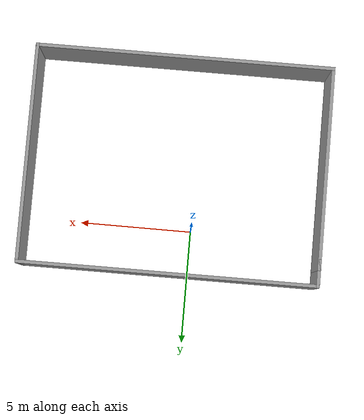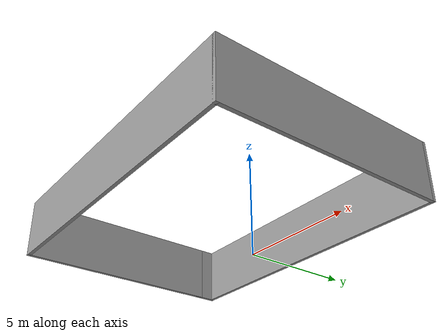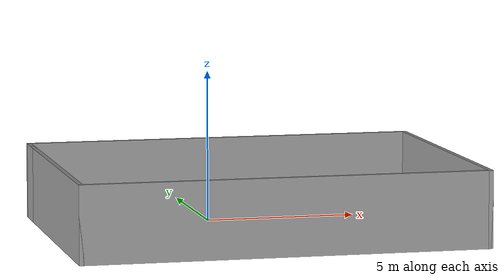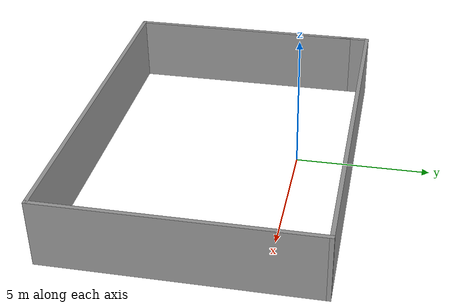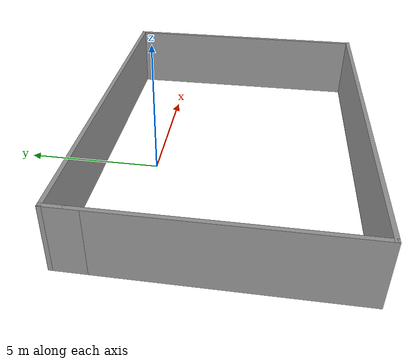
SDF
<?xml version='1.0'?>
<sdf version='1.7'>
  <model name='world'>
    <pose>0.877986 -2.7263 0 0 -0 0</pose>
    <link name='Wall_11'>
      <collision name='Wall_11_Collision'>
        <geometry>
          <box>
            <size>9 0.15 2.5</size>
          </box>
        </geometry>
        <pose>0 0 1.25 0 -0 0</pose>
      </collision>
      <visual name='Wall_11_Visual'>
        <pose>0 0 1.25 0 -0 0</pose>
        <geometry>
          <box>
            <size>9 0.15 2.5</size>
          </box>
        </geometry>
        <material>
          <script>
            <uri>file://media/materials/scripts/gazebo.material</uri>
            <name>Gazebo/Grey</name>
          </script>
          <ambient>1 1 1 1</ambient>
        </material>
        <meta>
          <layer>0</layer>
        </meta>
      </visual>
      <pose>-6.55 -0.375 0 0 -0 -1.5708</pose>
    </link>
    <link name='Wall_12'>
      <collision name='Wall_12_Collision'>
        <geometry>
          <box>
            <size>13.25 0.15 2.5</size>
          </box>
        </geometry>
        <pose>0 0 1.25 0 -0 0</pose>
      </collision>
      <visual name='Wall_12_Visual'>
        <pose>0 0 1.25 0 -0 0</pose>
        <geometry>
          <box>
            <size>13.25 0.15 2.5</size>
          </box>
        </geometry>
        <material>
          <script>
            <uri>file://media/materials/scripts/gazebo.material</uri>
            <name>Gazebo/Grey</name>
          </script>
          <ambient>1 1 1 1</ambient>
        </material>
        <meta>
          <layer>0</layer>
        </meta>
      </visual>
      <pose>-0 -4.8 0 0 -0 0</pose>
    </link>
    <link name='Wall_13'>
      <collision name='Wall_13_Collision'>
        <geometry>
          <box>
            <size>9.75 0.15 2.5</size>
          </box>
        </geometry>
        <pose>0 0 1.25 0 -0 0</pose>
      </collision>
      <visual name='Wall_13_Visual'>
        <pose>0 0 1.25 0 -0 0</pose>
        <geometry>
          <box>
            <size>9.75 0.15 2.5</size>
          </box>
        </geometry>
        <material>
          <script>
            <uri>file://media/materials/scripts/gazebo.material</uri>
            <name>Gazebo/Grey</name>
          </script>
          <ambient>1 1 1 1</ambient>
        </material>
        <meta>
          <layer>0</layer>
        </meta>
      </visual>
      <pose>6.55 0 0 0 -0 1.5708</pose>
    </link>
    <link name='Wall_14'>
      <collision name='Wall_14_Collision'>
        <geometry>
          <box>
            <size>13.25 0.15 2.5</size>
          </box>
        </geometry>
        <pose>0 0 1.25 0 -0 0</pose>
      </collision>
      <visual name='Wall_14_Visual'>
        <pose>0 0 1.25 0 -0 0</pose>
        <geometry>
          <box>
            <size>13.25 0.15 2.5</size>
          </box>
        </geometry>
        <material>
          <script>
            <uri>file://media/materials/scripts/gazebo.material</uri>
            <name>Gazebo/Grey</name>
          </script>
          <ambient>1 1 1 1</ambient>
        </material>
        <meta>
          <layer>0</layer>
        </meta>
      </visual>
      <pose>-0 4.8 0 0 -0 3.14159</pose>
    </link>
    <link name='Wall_15'>
      <collision name='Wall_15_Collision'>
        <geometry>
          <box>
            <size>1.25 0.15 2.5</size>
          </box>
        </geometry>
        <pose>0 0 1.25 0 -0 0</pose>
      </collision>
      <visual name='Wall_15_Visual'>
        <pose>0 0 1.25 0 -0 0</pose>
        <geometry>
          <box>
            <size>1.25 0.15 2.5</size>
          </box>
        </geometry>
        <material>
          <script>
            <uri>file://media/materials/scripts/gazebo.material</uri>
            <name>Gazebo/Grey</name>
          </script>
          <ambient>1 1 1 1</ambient>
        </material>
        <meta>
          <layer>0</layer>
        </meta>
      </visual>
      <pose>-6.55 4.25 0 0 -0 -1.5708</pose>
    </link>
    <static>1</static>
  </model>
</sdf>
